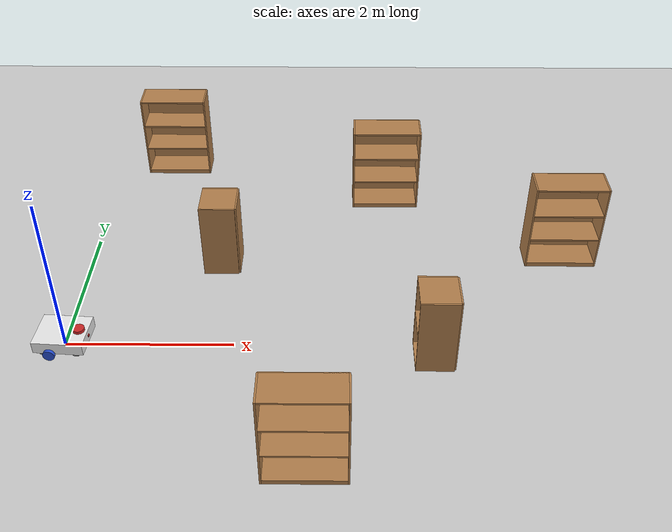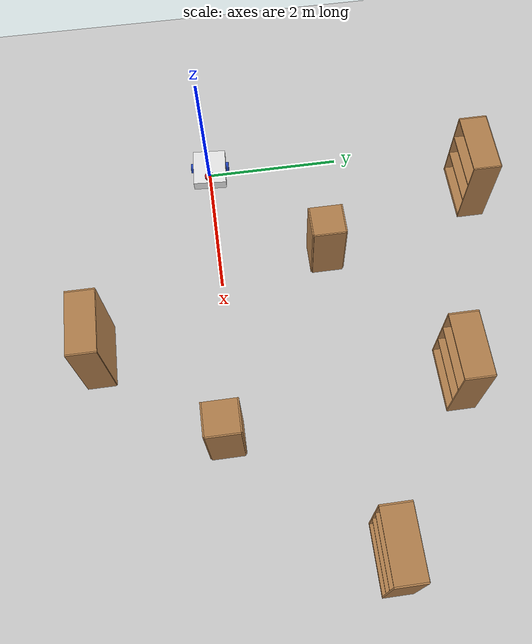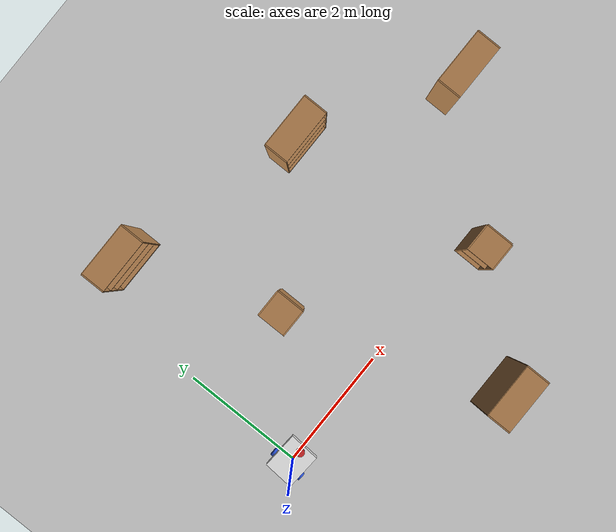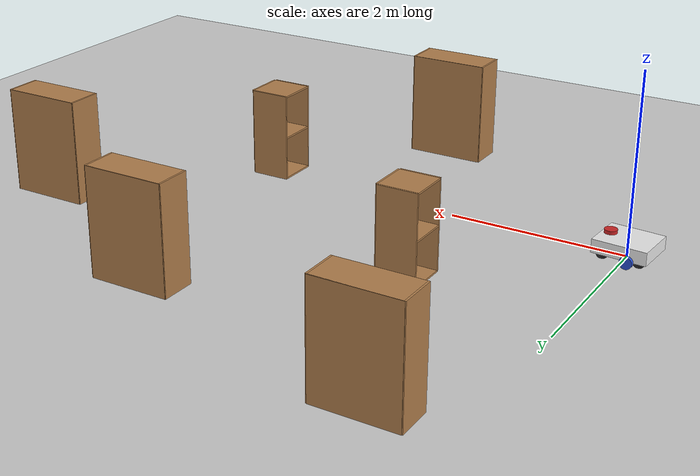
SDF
<sdf version="1.7">
 <world name="default">
  <light name="sun" type="directional">
   <pose>0 0 10 0 -0 0</pose>
   <diffuse>0.8 0.8 0.8 1</diffuse>
   <specular>0.2 0.2 0.2 1</specular>
   <attenuation>
    <range>1000</range>
    <constant>0.9</constant>
    <linear>0.01</linear>
    <quadratic>0.001</quadratic>
   </attenuation>
   <direction>-0.5 0.1 -0.9</direction>
   <spot><inner_angle>0</inner_angle><outer_angle>0</outer_angle><falloff>0</falloff></spot>
  </light>
  <model name="ground_plane">
   <static>1</static>
   <link name="link">
    <collision name="collision">
     <geometry><plane><normal>0 0 1</normal><size>100 100</size></plane></geometry>
     <surface>
      <contact><collide_bitmask>65535</collide_bitmask></contact>
      <friction><ode><mu>100</mu><mu2>50</mu2></ode></friction>
     </surface>
    </collision>
    <visual name="visual">
     <cast_shadows>0</cast_shadows>
     <geometry><plane><normal>0 0 1</normal><size>100 100</size></plane></geometry>
     <material>
      <script><uri>file://media/materials/scripts/gazebo.material</uri><name>Gazebo/Grey</name></script>
     </material>
    </visual>
   </link>
  </model>
  <gravity>0 0 -9.8</gravity>
  <magnetic_field>6e-06 2.3e-05 -4.2e-05</magnetic_field>
  <atmosphere type="adiabatic"/>
  <physics type="ode">
   <max_step_size>0.001</max_step_size>
   <real_time_factor>1</real_time_factor>
   <real_time_update_rate>1000</real_time_update_rate>
  </physics>
  <scene><ambient>0.4 0.4 0.4 1</ambient><background>0.7 0.7 0.7 1</background><shadows>1</shadows></scene>
  <audio><device>default</device></audio>
  <spherical_coordinates>
   <surface_model>EARTH_WGS84</surface_model>
   <latitude_deg>0</latitude_deg>
   <longitude_deg>0</longitude_deg>
   <elevation>0</elevation>
   <heading_deg>0</heading_deg>
  </spherical_coordinates>
  <model name="my_bot">
   <link name="base_link">
    <inertial>
     <pose>0.04 0 0.035 0 -0 0</pose>
     <mass>0.5</mass>
     <inertia>
      <ixx>0.0156198</ixx>
      <ixy>0</ixy>
      <ixz>-0.0028</ixz>
      <iyy>0.0225698</iyy>
      <iyz>0</iyz>
      <izz>0.032479</izz>
     </inertia>
    </inertial>
    <collision name="base_link_fixed_joint_lump__chassis_collision">
     <pose>0 0 0.075 0 -0 0</pose>
     <geometry><box><size>0.6 0.5 0.15</size></box></geometry>
    </collision>
    <collision name="base_link_fixed_joint_lump__caster_wheel_back_left_collision_1">
     <pose>-0.2 -0.175 0 0 -0 0</pose>
     <geometry><sphere><radius>0.07</radius></sphere></geometry>
     <surface><friction><ode><mu>0.0001</mu><mu2>0.0001</mu2></ode></friction></surface>
    </collision>
    <collision name="base_link_fixed_joint_lump__caster_wheel_back_right_collision_2">
     <pose>-0.2 0.175 0 0 -0 0</pose>
     <geometry><sphere><radius>0.07</radius></sphere></geometry>
     <surface><friction><ode><mu>0.0001</mu><mu2>0.0001</mu2></ode></friction></surface>
    </collision>
    <collision name="base_link_fixed_joint_lump__caster_wheel_front_left_collision_3">
     <pose>0.2 -0.175 0 0 -0 0</pose>
     <geometry><sphere><radius>0.07</radius></sphere></geometry>
     <surface><friction><ode><mu>0.0001</mu><mu2>0.0001</mu2></ode></friction></surface>
    </collision>
    <collision name="base_link_fixed_joint_lump__caster_wheel_front_right_collision_4">
     <pose>0.2 0.175 0 0 -0 0</pose>
     <geometry><sphere><radius>0.07</radius></sphere></geometry>
     <surface><friction><ode><mu>0.0001</mu><mu2>0.0001</mu2></ode></friction></surface>
    </collision>
    <collision name="base_link_fixed_joint_lump__laser_frame_collision_5">
     <pose>0.2 0 0.175 0 -0 0</pose>
     <geometry><cylinder><length>0.04</length><radius>0.07</radius></cylinder></geometry>
    </collision>
    <visual name="base_link_fixed_joint_lump__chassis_visual">
     <pose>0 0 0.075 0 -0 0</pose>
     <geometry><box><size>0.6 0.5 0.15</size></box></geometry>
     <material>
      <script><name>Gazebo/White</name><uri>file://media/materials/scripts/gazebo.material</uri></script>
     </material>
    </visual>
    <visual name="base_link_fixed_joint_lump__camera_link_visual_1">
     <pose>0.305 0 0.08 0 -0 0</pose>
     <geometry><box><size>0.01 0.03 0.03</size></box></geometry>
     <material>
      <script><name>Gazebo/Red</name><uri>file://media/materials/scripts/gazebo.material</uri></script>
     </material>
    </visual>
    <visual name="base_link_fixed_joint_lump__caster_wheel_back_left_visual_2">
     <pose>-0.2 -0.175 0 0 -0 0</pose>
     <geometry><sphere><radius>0.07</radius></sphere></geometry>
     <material>
      <script><name>Gazebo/Black</name><uri>file://media/materials/scripts/gazebo.material</uri></script>
     </material>
    </visual>
    <visual name="base_link_fixed_joint_lump__caster_wheel_back_right_visual_3">
     <pose>-0.2 0.175 0 0 -0 0</pose>
     <geometry><sphere><radius>0.07</radius></sphere></geometry>
     <material>
      <script><name>Gazebo/Black</name><uri>file://media/materials/scripts/gazebo.material</uri></script>
     </material>
    </visual>
    <visual name="base_link_fixed_joint_lump__caster_wheel_front_left_visual_4">
     <pose>0.2 -0.175 0 0 -0 0</pose>
     <geometry><sphere><radius>0.07</radius></sphere></geometry>
     <material>
      <script><name>Gazebo/Black</name><uri>file://media/materials/scripts/gazebo.material</uri></script>
     </material>
    </visual>
    <visual name="base_link_fixed_joint_lump__caster_wheel_front_right_visual_5">
     <pose>0.2 0.175 0 0 -0 0</pose>
     <geometry><sphere><radius>0.07</radius></sphere></geometry>
     <material>
      <script><name>Gazebo/Black</name><uri>file://media/materials/scripts/gazebo.material</uri></script>
     </material>
    </visual>
    <visual name="base_link_fixed_joint_lump__laser_frame_visual_6">
     <pose>0.2 0 0.175 0 -0 0</pose>
     <geometry><cylinder><length>0.04</length><radius>0.07</radius></cylinder></geometry>
     <material>
      <script><name>Gazebo/Red</name><uri>file://media/materials/scripts/gazebo.material</uri></script>
     </material>
    </visual>
    <sensor name="camera" type="camera">
     <visualize>1</visualize>
     <update_rate>10</update_rate>
     <camera>
      <horizontal_fov>1.089</horizontal_fov>
      <image><format>R8G8B8</format><width>640</width><height>480</height></image>
      <clip><near>0.05</near><far>8</far></clip>
     </camera>
     <plugin name="camera_controller" filename="libgazebo_ros_camera.so">
      <frame>camera_link_optical</frame>
     </plugin>
     <pose>0.305 0 0.08 0 -0 0</pose>
    </sensor>
    <sensor name="laser" type="ray">
     <visualize>1</visualize>
     <update_rate>10</update_rate>
     <ray>
      <scan>
       <horizontal>
        <samples>270</samples>
        <resolution>1</resolution>
        <min_angle>-2.3</min_angle>
        <max_angle>2.3</max_angle>
       </horizontal>
       <vertical><samples>1</samples><min_angle>0</min_angle><max_angle>0</max_angle></vertical>
      </scan>
      <range><min>0.3</min><max>12</max><resolution>0.01</resolution></range>
     </ray>
     <plugin name="laser_controller" filename="libgazebo_ros_ray_sensor.so">
      <ros><namespace>/</namespace><argument>~/out:=scan</argument></ros>
      <output_type>sensor_msgs/LaserScan</output_type>
      <frame>laser_frame</frame>
     </plugin>
     <pose>0.2 0 0.175 0 -0 0</pose>
    </sensor>
   </link>
   <joint name="left_wheel_joint" type="revolute">
    <pose relative_to="base_link">-0.1 0.275 0 -1.5708 0 0</pose>
    <parent>base_link</parent>
    <child>left_wheel</child>
    <axis>
     <xyz>0 0 1</xyz>
     <limit><lower>-1e+16</lower><upper>1e+16</upper></limit>
     <dynamics><spring_reference>0</spring_reference><spring_stiffness>0</spring_stiffness></dynamics>
    </axis>
   </joint>
   <link name="left_wheel">
    <pose relative_to="left_wheel_joint">0 0 0 0 -0 0</pose>
    <inertial>
     <mass>0.1</mass>
     <inertia>
      <ixx>0.000135833</ixx>
      <ixy>0</ixy>
      <ixz>0</ixz>
      <iyy>0.000135833</iyy>
      <iyz>0</iyz>
      <izz>0.000245</izz>
     </inertia>
    </inertial>
    <collision name="left_wheel_collision"><geometry><sphere><radius>0.07</radius></sphere></geometry></collision>
    <visual name="left_wheel_visual">
     <geometry><cylinder><length>0.04</length><radius>0.07</radius></cylinder></geometry>
     <material>
      <script><name>Gazebo/Blue</name><uri>file://media/materials/scripts/gazebo.material</uri></script>
     </material>
    </visual>
   </link>
   <joint name="right_wheel_joint" type="revolute">
    <pose relative_to="base_link">-0.1 -0.275 0 1.5708 -0 0</pose>
    <parent>base_link</parent>
    <child>right_wheel</child>
    <axis>
     <xyz>0 0 -1</xyz>
     <limit><lower>-1e+16</lower><upper>1e+16</upper></limit>
     <dynamics><spring_reference>0</spring_reference><spring_stiffness>0</spring_stiffness></dynamics>
    </axis>
   </joint>
   <link name="right_wheel">
    <pose relative_to="right_wheel_joint">0 0 0 0 -0 0</pose>
    <inertial>
     <mass>0.1</mass>
     <inertia>
      <ixx>0.000135833</ixx>
      <ixy>0</ixy>
      <ixz>0</ixz>
      <iyy>0.000135833</iyy>
      <iyz>0</iyz>
      <izz>0.000245</izz>
     </inertia>
    </inertial>
    <collision name="right_wheel_collision">
     <geometry><sphere><radius>0.07</radius></sphere></geometry>
    </collision>
    <visual name="right_wheel_visual">
     <geometry><cylinder><length>0.04</length><radius>0.07</radius></cylinder></geometry>
     <material>
      <script><name>Gazebo/Blue</name><uri>file://media/materials/scripts/gazebo.material</uri></script>
     </material>
    </visual>
   </link>
   <static>0</static>
   <plugin name="gazebo_ros2_control" filename="libgazebo_ros2_control.so">
    <parameters>/home/rus/Documents/dev_ws/install/BB01/share/BB01/config/my_controllers.yaml</parameters>
   </plugin>
   <pose>-0.005749 0.010154 0.069996 -2.2e-05 -0 -0.065221</pose>
  </model>
  <model name="bookshelf">
   <static>1</static>
   <link name="link">
    <inertial><mass>1</mass></inertial>
    <collision name="back">
     <pose>0 0.005 0.6 0 -0 0</pose>
     <geometry><box><size>0.9 0.01 1.2</size></box></geometry>
    </collision>
    <visual name="visual1">
     <pose>0 0.005 0.6 0 -0 0</pose>
     <geometry><box><size>0.9 0.01 1.2</size></box></geometry>
     <material>
      <script><uri>file://media/materials/scripts/gazebo.material</uri><name>Gazebo/Wood</name></script>
     </material>
    </visual>
    <collision name="left_side">
     <pose>0.45 -0.195 0.6 0 -0 0</pose>
     <geometry><box><size>0.02 0.4 1.2</size></box></geometry>
    </collision>
    <visual name="visual2">
     <pose>0.45 -0.195 0.6 0 -0 0</pose>
     <geometry><box><size>0.02 0.4 1.2</size></box></geometry>
     <material>
      <script><uri>file://media/materials/scripts/gazebo.material</uri><name>Gazebo/Wood</name></script>
     </material>
    </visual>
    <collision name="right_side">
     <pose>-0.45 -0.195 0.6 0 -0 0</pose>
     <geometry><box><size>0.02 0.4 1.2</size></box></geometry>
    </collision>
    <visual name="visual3">
     <pose>-0.45 -0.195 0.6 0 -0 0</pose>
     <geometry><box><size>0.02 0.4 1.2</size></box></geometry>
     <material>
      <script><uri>file://media/materials/scripts/gazebo.material</uri><name>Gazebo/Wood</name></script>
     </material>
    </visual>
    <collision name="bottom">
     <pose>0 -0.195 0.03 0 -0 0</pose>
     <geometry><box><size>0.88 0.4 0.06</size></box></geometry>
    </collision>
    <visual name="visual4">
     <pose>0 -0.195 0.03 0 -0 0</pose>
     <geometry><box><size>0.88 0.4 0.06</size></box></geometry>
     <material>
      <script><uri>file://media/materials/scripts/gazebo.material</uri><name>Gazebo/Wood</name></script>
     </material>
    </visual>
    <collision name="top">
     <pose>0 -0.195 1.19 0 -0 0</pose>
     <geometry><box><size>0.88 0.4 0.02</size></box></geometry>
    </collision>
    <visual name="visual5">
     <pose>0 -0.195 1.19 0 -0 0</pose>
     <geometry><box><size>0.88 0.4 0.02</size></box></geometry>
     <material>
      <script><uri>file://media/materials/scripts/gazebo.material</uri><name>Gazebo/Wood</name></script>
     </material>
    </visual>
    <collision name="low_shelf">
     <pose>0 -0.195 0.43 0 -0 0</pose>
     <geometry><box><size>0.88 0.4 0.02</size></box></geometry>
    </collision>
    <visual name="visual6">
     <pose>0 -0.195 0.43 0 -0 0</pose>
     <geometry><box><size>0.88 0.4 0.02</size></box></geometry>
     <material>
      <script><uri>file://media/materials/scripts/gazebo.material</uri><name>Gazebo/Wood</name></script>
     </material>
    </visual>
    <collision name="high_shelf">
     <pose>0 -0.195 0.8 0 -0 0</pose>
     <geometry><box><size>0.88 0.4 0.02</size></box></geometry>
    </collision>
    <visual name="visual7">
     <pose>0 -0.195 0.8 0 -0 0</pose>
     <geometry><box><size>0.88 0.4 0.02</size></box></geometry>
     <material>
      <script><uri>file://media/materials/scripts/gazebo.material</uri><name>Gazebo/Wood</name></script>
     </material>
    </visual>
   </link>
   <pose>3.90116 3.24583 0 0 -0 0</pose>
  </model>
  <model name="cabinet">
   <static>1</static>
   <link name="cabinet_bottom_plate">
    <inertial>
     <pose>0 0 -1 0 -0 0</pose>
     <inertia><ixx>2.05</ixx><ixy>0</ixy><ixz>0</ixz><iyy>2.05</iyy><iyz>0</iyz><izz>2.05</izz></inertia>
     <mass>25</mass>
    </inertial>
    <collision name="cabinet_bottom_plate_geom">
     <pose>0 0 0.01 0 -0 0</pose>
     <geometry><box><size>0.45 0.45 0.02</size></box></geometry>
    </collision>
    <visual name="cabinet_bottom_plate_geom_visual">
     <pose>0 0 0.01 0 -0 0</pose>
     <geometry><box><size>0.45 0.45 0.02</size></box></geometry>
     <material>
      <script><uri>file://media/materials/scripts/gazebo.material</uri><name>Gazebo/Wood</name></script>
     </material>
    </visual>
    <collision name="cabinet_bottom_plate_geom_cabinet_back_plate">
     <pose>0.235 0 0.51 0 -0 0</pose>
     <geometry><box><size>0.02 0.45 1.02</size></box></geometry>
    </collision>
    <visual name="cabinet_bottom_plate_geom_cabinet_back_plate_visual">
     <pose>0.235 0 0.51 0 -0 0</pose>
     <geometry><box><size>0.02 0.45 1.02</size></box></geometry>
     <material>
      <script><uri>file://media/materials/scripts/gazebo.material</uri><name>Gazebo/Wood</name></script>
     </material>
    </visual>
    <collision name="cabinet_bottom_plate_geom_cabinet_left_plate">
     <pose>0 0.235 0.51 0 -0 0</pose>
     <geometry><box><size>0.45 0.02 1.02</size></box></geometry>
    </collision>
    <visual name="cabinet_bottom_plate_geom_cabinet_left_plate_visual">
     <pose>0 0.235 0.51 0 -0 0</pose>
     <geometry><box><size>0.45 0.02 1.02</size></box></geometry>
     <material>
      <script><uri>file://media/materials/scripts/gazebo.material</uri><name>Gazebo/Wood</name></script>
     </material>
    </visual>
    <collision name="cabinet_bottom_plate_geom_cabinet_middle_plate">
     <pose>0 0 0.51 0 -0 0</pose>
     <geometry><box><size>0.45 0.45 0.02</size></box></geometry>
    </collision>
    <visual name="cabinet_bottom_plate_geom_cabinet_middle_plate_visual">
     <pose>0 0 0.51 0 -0 0</pose>
     <geometry><box><size>0.45 0.45 0.02</size></box></geometry>
     <material>
      <script><uri>file://media/materials/scripts/gazebo.material</uri><name>Gazebo/Wood</name></script>
     </material>
    </visual>
    <collision name="cabinet_bottom_plate_geom_cabinet_right_plate">
     <pose>0 -0.235 0.51 0 -0 0</pose>
     <geometry><box><size>0.45 0.02 1.02</size></box></geometry>
    </collision>
    <visual name="cabinet_bottom_plate_geom_cabinet_right_plate_visual">
     <pose>0 -0.235 0.51 0 -0 0</pose>
     <geometry><box><size>0.45 0.02 1.02</size></box></geometry>
     <material>
      <script><uri>file://media/materials/scripts/gazebo.material</uri><name>Gazebo/Wood</name></script>
     </material>
    </visual>
    <collision name="cabinet_bottom_plate_geom_cabinet_top_plate">
     <pose>0 0 1.01 0 -0 0</pose>
     <geometry><box><size>0.45 0.45 0.02</size></box></geometry>
    </collision>
    <visual name="cabinet_bottom_plate_geom_cabinet_top_plate_visual">
     <pose>0 0 1.01 0 -0 0</pose>
     <geometry><box><size>0.45 0.45 0.02</size></box></geometry>
     <material>
      <script><uri>file://media/materials/scripts/gazebo.material</uri><name>Gazebo/Wood</name></script>
     </material>
    </visual>
   </link>
   <pose>4.35428 -0.168174 0 0 -0 0</pose>
  </model>
  <model name="bookshelf_0">
   <static>1</static>
   <link name="link">
    <inertial><mass>1</mass></inertial>
    <collision name="back">
     <pose>0 0.005 0.6 0 -0 0</pose>
     <geometry><box><size>0.9 0.01 1.2</size></box></geometry>
    </collision>
    <visual name="visual1">
     <pose>0 0.005 0.6 0 -0 0</pose>
     <geometry><box><size>0.9 0.01 1.2</size></box></geometry>
     <material>
      <script><uri>file://media/materials/scripts/gazebo.material</uri><name>Gazebo/Wood</name></script>
     </material>
    </visual>
    <collision name="left_side">
     <pose>0.45 -0.195 0.6 0 -0 0</pose>
     <geometry><box><size>0.02 0.4 1.2</size></box></geometry>
    </collision>
    <visual name="visual2">
     <pose>0.45 -0.195 0.6 0 -0 0</pose>
     <geometry><box><size>0.02 0.4 1.2</size></box></geometry>
     <material>
      <script><uri>file://media/materials/scripts/gazebo.material</uri><name>Gazebo/Wood</name></script>
     </material>
    </visual>
    <collision name="right_side">
     <pose>-0.45 -0.195 0.6 0 -0 0</pose>
     <geometry><box><size>0.02 0.4 1.2</size></box></geometry>
    </collision>
    <visual name="visual3">
     <pose>-0.45 -0.195 0.6 0 -0 0</pose>
     <geometry><box><size>0.02 0.4 1.2</size></box></geometry>
     <material>
      <script><uri>file://media/materials/scripts/gazebo.material</uri><name>Gazebo/Wood</name></script>
     </material>
    </visual>
    <collision name="bottom">
     <pose>0 -0.195 0.03 0 -0 0</pose>
     <geometry><box><size>0.88 0.4 0.06</size></box></geometry>
    </collision>
    <visual name="visual4">
     <pose>0 -0.195 0.03 0 -0 0</pose>
     <geometry><box><size>0.88 0.4 0.06</size></box></geometry>
     <material>
      <script><uri>file://media/materials/scripts/gazebo.material</uri><name>Gazebo/Wood</name></script>
     </material>
    </visual>
    <collision name="top">
     <pose>0 -0.195 1.19 0 -0 0</pose>
     <geometry><box><size>0.88 0.4 0.02</size></box></geometry>
    </collision>
    <visual name="visual5">
     <pose>0 -0.195 1.19 0 -0 0</pose>
     <geometry><box><size>0.88 0.4 0.02</size></box></geometry>
     <material>
      <script><uri>file://media/materials/scripts/gazebo.material</uri><name>Gazebo/Wood</name></script>
     </material>
    </visual>
    <collision name="low_shelf">
     <pose>0 -0.195 0.43 0 -0 0</pose>
     <geometry><box><size>0.88 0.4 0.02</size></box></geometry>
    </collision>
    <visual name="visual6">
     <pose>0 -0.195 0.43 0 -0 0</pose>
     <geometry><box><size>0.88 0.4 0.02</size></box></geometry>
     <material>
      <script><uri>file://media/materials/scripts/gazebo.material</uri><name>Gazebo/Wood</name></script>
     </material>
    </visual>
    <collision name="high_shelf">
     <pose>0 -0.195 0.8 0 -0 0</pose>
     <geometry><box><size>0.88 0.4 0.02</size></box></geometry>
    </collision>
    <visual name="visual7">
     <pose>0 -0.195 0.8 0 -0 0</pose>
     <geometry><box><size>0.88 0.4 0.02</size></box></geometry>
     <material>
      <script><uri>file://media/materials/scripts/gazebo.material</uri><name>Gazebo/Wood</name></script>
     </material>
    </visual>
   </link>
   <pose>0.843653 4.11378 0 0 -0 0</pose>
  </model>
  <model name="cabinet_0">
   <static>1</static>
   <link name="cabinet_bottom_plate">
    <inertial>
     <pose>0 0 -1 0 -0 0</pose>
     <inertia><ixx>2.05</ixx><ixy>0</ixy><ixz>0</ixz><iyy>2.05</iyy><iyz>0</iyz><izz>2.05</izz></inertia>
     <mass>25</mass>
    </inertial>
    <collision name="cabinet_bottom_plate_geom">
     <pose>0 0 0.01 0 -0 0</pose>
     <geometry><box><size>0.45 0.45 0.02</size></box></geometry>
    </collision>
    <visual name="cabinet_bottom_plate_geom_visual">
     <pose>0 0 0.01 0 -0 0</pose>
     <geometry><box><size>0.45 0.45 0.02</size></box></geometry>
     <material>
      <script><uri>file://media/materials/scripts/gazebo.material</uri><name>Gazebo/Wood</name></script>
     </material>
    </visual>
    <collision name="cabinet_bottom_plate_geom_cabinet_back_plate">
     <pose>0.235 0 0.51 0 -0 0</pose>
     <geometry><box><size>0.02 0.45 1.02</size></box></geometry>
    </collision>
    <visual name="cabinet_bottom_plate_geom_cabinet_back_plate_visual">
     <pose>0.235 0 0.51 0 -0 0</pose>
     <geometry><box><size>0.02 0.45 1.02</size></box></geometry>
     <material>
      <script><uri>file://media/materials/scripts/gazebo.material</uri><name>Gazebo/Wood</name></script>
     </material>
    </visual>
    <collision name="cabinet_bottom_plate_geom_cabinet_left_plate">
     <pose>0 0.235 0.51 0 -0 0</pose>
     <geometry><box><size>0.45 0.02 1.02</size></box></geometry>
    </collision>
    <visual name="cabinet_bottom_plate_geom_cabinet_left_plate_visual">
     <pose>0 0.235 0.51 0 -0 0</pose>
     <geometry><box><size>0.45 0.02 1.02</size></box></geometry>
     <material>
      <script><uri>file://media/materials/scripts/gazebo.material</uri><name>Gazebo/Wood</name></script>
     </material>
    </visual>
    <collision name="cabinet_bottom_plate_geom_cabinet_middle_plate">
     <pose>0 0 0.51 0 -0 0</pose>
     <geometry><box><size>0.45 0.45 0.02</size></box></geometry>
    </collision>
    <visual name="cabinet_bottom_plate_geom_cabinet_middle_plate_visual">
     <pose>0 0 0.51 0 -0 0</pose>
     <geometry><box><size>0.45 0.45 0.02</size></box></geometry>
     <material>
      <script><uri>file://media/materials/scripts/gazebo.material</uri><name>Gazebo/Wood</name></script>
     </material>
    </visual>
    <collision name="cabinet_bottom_plate_geom_cabinet_right_plate">
     <pose>0 -0.235 0.51 0 -0 0</pose>
     <geometry><box><size>0.45 0.02 1.02</size></box></geometry>
    </collision>
    <visual name="cabinet_bottom_plate_geom_cabinet_right_plate_visual">
     <pose>0 -0.235 0.51 0 -0 0</pose>
     <geometry><box><size>0.45 0.02 1.02</size></box></geometry>
     <material>
      <script><uri>file://media/materials/scripts/gazebo.material</uri><name>Gazebo/Wood</name></script>
     </material>
    </visual>
    <collision name="cabinet_bottom_plate_geom_cabinet_top_plate">
     <pose>0 0 1.01 0 -0 0</pose>
     <geometry><box><size>0.45 0.45 0.02</size></box></geometry>
    </collision>
    <visual name="cabinet_bottom_plate_geom_cabinet_top_plate_visual">
     <pose>0 0 1.01 0 -0 0</pose>
     <geometry><box><size>0.45 0.45 0.02</size></box></geometry>
     <material>
      <script><uri>file://media/materials/scripts/gazebo.material</uri><name>Gazebo/Wood</name></script>
     </material>
    </visual>
   </link>
   <pose>1.72117 1.5764 0 0 -0 0</pose>
  </model>
  <model name="bookshelf_1">
   <static>1</static>
   <link name="link">
    <inertial><mass>1</mass></inertial>
    <collision name="back">
     <pose>0 0.005 0.6 0 -0 0</pose>
     <geometry><box><size>0.9 0.01 1.2</size></box></geometry>
    </collision>
    <visual name="visual1">
     <pose>0 0.005 0.6 0 -0 0</pose>
     <geometry><box><size>0.9 0.01 1.2</size></box></geometry>
     <material>
      <script><uri>file://media/materials/scripts/gazebo.material</uri><name>Gazebo/Wood</name></script>
     </material>
    </visual>
    <collision name="left_side">
     <pose>0.45 -0.195 0.6 0 -0 0</pose>
     <geometry><box><size>0.02 0.4 1.2</size></box></geometry>
    </collision>
    <visual name="visual2">
     <pose>0.45 -0.195 0.6 0 -0 0</pose>
     <geometry><box><size>0.02 0.4 1.2</size></box></geometry>
     <material>
      <script><uri>file://media/materials/scripts/gazebo.material</uri><name>Gazebo/Wood</name></script>
     </material>
    </visual>
    <collision name="right_side">
     <pose>-0.45 -0.195 0.6 0 -0 0</pose>
     <geometry><box><size>0.02 0.4 1.2</size></box></geometry>
    </collision>
    <visual name="visual3">
     <pose>-0.45 -0.195 0.6 0 -0 0</pose>
     <geometry><box><size>0.02 0.4 1.2</size></box></geometry>
     <material>
      <script><uri>file://media/materials/scripts/gazebo.material</uri><name>Gazebo/Wood</name></script>
     </material>
    </visual>
    <collision name="bottom">
     <pose>0 -0.195 0.03 0 -0 0</pose>
     <geometry><box><size>0.88 0.4 0.06</size></box></geometry>
    </collision>
    <visual name="visual4">
     <pose>0 -0.195 0.03 0 -0 0</pose>
     <geometry><box><size>0.88 0.4 0.06</size></box></geometry>
     <material>
      <script><uri>file://media/materials/scripts/gazebo.material</uri><name>Gazebo/Wood</name></script>
     </material>
    </visual>
    <collision name="top">
     <pose>0 -0.195 1.19 0 -0 0</pose>
     <geometry><box><size>0.88 0.4 0.02</size></box></geometry>
    </collision>
    <visual name="visual5">
     <pose>0 -0.195 1.19 0 -0 0</pose>
     <geometry><box><size>0.88 0.4 0.02</size></box></geometry>
     <material>
      <script><uri>file://media/materials/scripts/gazebo.material</uri><name>Gazebo/Wood</name></script>
     </material>
    </visual>
    <collision name="low_shelf">
     <pose>0 -0.195 0.43 0 -0 0</pose>
     <geometry><box><size>0.88 0.4 0.02</size></box></geometry>
    </collision>
    <visual name="visual6">
     <pose>0 -0.195 0.43 0 -0 0</pose>
     <geometry><box><size>0.88 0.4 0.02</size></box></geometry>
     <material>
      <script><uri>file://media/materials/scripts/gazebo.material</uri><name>Gazebo/Wood</name></script>
     </material>
    </visual>
    <collision name="high_shelf">
     <pose>0 -0.195 0.8 0 -0 0</pose>
     <geometry><box><size>0.88 0.4 0.02</size></box></geometry>
    </collision>
    <visual name="visual7">
     <pose>0 -0.195 0.8 0 -0 0</pose>
     <geometry><box><size>0.88 0.4 0.02</size></box></geometry>
     <material>
      <script><uri>file://media/materials/scripts/gazebo.material</uri><name>Gazebo/Wood</name></script>
     </material>
    </visual>
   </link>
   <pose>2.90532 -1.61256 0 0 -0 0</pose>
  </model>
  <model name="bookshelf_2">
   <static>1</static>
   <link name="link">
    <inertial><mass>1</mass></inertial>
    <collision name="back">
     <pose>0 0.005 0.6 0 -0 0</pose>
     <geometry><box><size>0.9 0.01 1.2</size></box></geometry>
    </collision>
    <visual name="visual1">
     <pose>0 0.005 0.6 0 -0 0</pose>
     <geometry><box><size>0.9 0.01 1.2</size></box></geometry>
     <material>
      <script><uri>file://media/materials/scripts/gazebo.material</uri><name>Gazebo/Wood</name></script>
     </material>
    </visual>
    <collision name="left_side">
     <pose>0.45 -0.195 0.6 0 -0 0</pose>
     <geometry><box><size>0.02 0.4 1.2</size></box></geometry>
    </collision>
    <visual name="visual2">
     <pose>0.45 -0.195 0.6 0 -0 0</pose>
     <geometry><box><size>0.02 0.4 1.2</size></box></geometry>
     <material>
      <script><uri>file://media/materials/scripts/gazebo.material</uri><name>Gazebo/Wood</name></script>
     </material>
    </visual>
    <collision name="right_side">
     <pose>-0.45 -0.195 0.6 0 -0 0</pose>
     <geometry><box><size>0.02 0.4 1.2</size></box></geometry>
    </collision>
    <visual name="visual3">
     <pose>-0.45 -0.195 0.6 0 -0 0</pose>
     <geometry><box><size>0.02 0.4 1.2</size></box></geometry>
     <material>
      <script><uri>file://media/materials/scripts/gazebo.material</uri><name>Gazebo/Wood</name></script>
     </material>
    </visual>
    <collision name="bottom">
     <pose>0 -0.195 0.03 0 -0 0</pose>
     <geometry><box><size>0.88 0.4 0.06</size></box></geometry>
    </collision>
    <visual name="visual4">
     <pose>0 -0.195 0.03 0 -0 0</pose>
     <geometry><box><size>0.88 0.4 0.06</size></box></geometry>
     <material>
      <script><uri>file://media/materials/scripts/gazebo.material</uri><name>Gazebo/Wood</name></script>
     </material>
    </visual>
    <collision name="top">
     <pose>0 -0.195 1.19 0 -0 0</pose>
     <geometry><box><size>0.88 0.4 0.02</size></box></geometry>
    </collision>
    <visual name="visual5">
     <pose>0 -0.195 1.19 0 -0 0</pose>
     <geometry><box><size>0.88 0.4 0.02</size></box></geometry>
     <material>
      <script><uri>file://media/materials/scripts/gazebo.material</uri><name>Gazebo/Wood</name></script>
     </material>
    </visual>
    <collision name="low_shelf">
     <pose>0 -0.195 0.43 0 -0 0</pose>
     <geometry><box><size>0.88 0.4 0.02</size></box></geometry>
    </collision>
    <visual name="visual6">
     <pose>0 -0.195 0.43 0 -0 0</pose>
     <geometry><box><size>0.88 0.4 0.02</size></box></geometry>
     <material>
      <script><uri>file://media/materials/scripts/gazebo.material</uri><name>Gazebo/Wood</name></script>
     </material>
    </visual>
    <collision name="high_shelf">
     <pose>0 -0.195 0.8 0 -0 0</pose>
     <geometry><box><size>0.88 0.4 0.02</size></box></geometry>
    </collision>
    <visual name="visual7">
     <pose>0 -0.195 0.8 0 -0 0</pose>
     <geometry><box><size>0.88 0.4 0.02</size></box></geometry>
     <material>
      <script><uri>file://media/materials/scripts/gazebo.material</uri><name>Gazebo/Wood</name></script>
     </material>
    </visual>
   </link>
   <pose>6.15562 1.91388 0 0 -0 0</pose>
  </model>
 </world>
</sdf>
